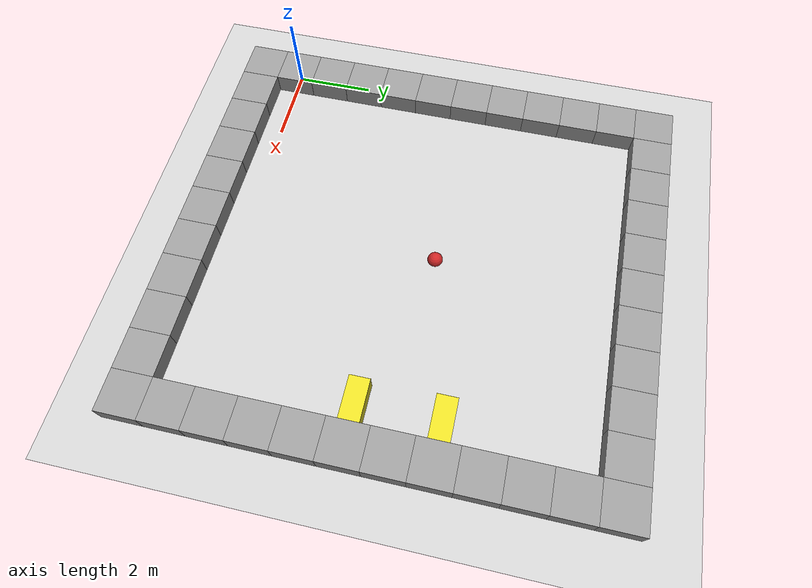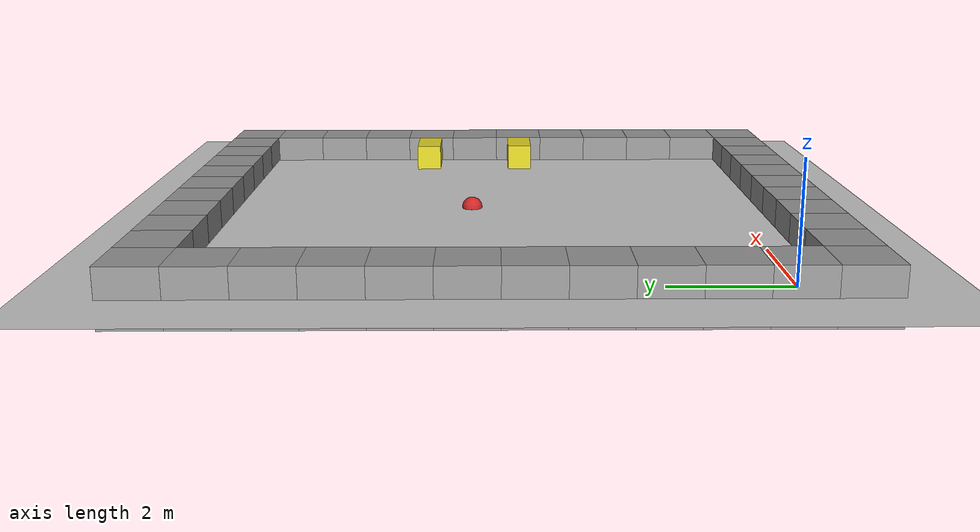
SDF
<sdf version="1.4">
 <world name="default">
  <light name="sun" type="directional">
   <pose>0 0 10 0 -0 0</pose>
   <diffuse>0.8 0.8 0.8 1</diffuse>
   <specular>0.2 0.2 0.2 1</specular>
   <attenuation>
    <range>1000</range>
    <constant>0.9</constant>
    <linear>0.01</linear>
    <quadratic>0.001</quadratic>
   </attenuation>
   <direction>-0.5 0.1 -0.9</direction>
  </light>
  <model name="ground_plane">
   <static>1</static>
   <link name="link">
    <collision name="collision">
     <geometry><plane><normal>0 0 1</normal><size>100 100</size></plane></geometry>
     <surface><friction><ode><mu>100</mu><mu2>50</mu2></ode></friction></surface>
    </collision>
    <visual name="visual">
     <cast_shadows>0</cast_shadows>
     <geometry><plane><normal>0 0 1</normal><size>100 100</size></plane></geometry>
     <material>
      <script><uri>file://media/materials/scripts/gazebo.material</uri><name>Gazebo/Grey</name></script>
     </material>
    </visual>
    <velocity_decay><linear>0</linear><angular>0</angular></velocity_decay>
   </link>
  </model>
  <physics type="ode">
   <max_step_size>0.001</max_step_size>
   <real_time_factor>1</real_time_factor>
   <real_time_update_rate>1000</real_time_update_rate>
   <gravity>0 0 -9.8</gravity>
  </physics>
  <scene><ambient>0.4 0.4 0.4 1</ambient><background>0.7 0.7 0.7 1</background><shadows>1</shadows></scene>
  <spherical_coordinates>
   <surface_model>EARTH_WGS84</surface_model>
   <latitude_deg>0</latitude_deg>
   <longitude_deg>0</longitude_deg>
   <elevation>0</elevation>
   <heading_deg>0</heading_deg>
  </spherical_coordinates>
  <model name="red_ball_1">
   <pose>5 5 0 0 -0 0</pose>
   <link name="link">
    <inertial>
     <mass>1</mass>
     <inertia><ixx>1</ixx><ixy>0</ixy><ixz>0</ixz><iyy>1</iyy><iyz>0</iyz><izz>1</izz></inertia>
    </inertial>
    <collision name="collision"><geometry><sphere><radius>0.192159</radius></sphere></geometry></collision>
    <visual name="visual">
     <geometry><sphere><radius>0.192159</radius></sphere></geometry>
     <material>
      <script><uri>file://media/materials/scripts/gazebo.material</uri><name>Gazebo/Red</name></script>
     </material>
    </visual>
    <velocity_decay><linear>0</linear><angular>0</angular></velocity_decay>
   </link>
   <static>0</static>
  </model>
  <model name="unit_box_1">
   <pose>0 -1 0 0 -0 0</pose>
   <link name="link">
    <inertial>
     <mass>1</mass>
     <inertia><ixx>1</ixx><ixy>0</ixy><ixz>0</ixz><iyy>1</iyy><iyz>0</iyz><izz>1</izz></inertia>
    </inertial>
    <collision name="collision"><geometry><box><size>1 1 1</size></box></geometry></collision>
    <visual name="visual">
     <geometry><box><size>1 1 1</size></box></geometry>
     <material>
      <script><uri>file://media/materials/scripts/gazebo.material</uri><name>Gazebo/Grey</name></script>
     </material>
    </visual>
    <velocity_decay><linear>0</linear><angular>0</angular></velocity_decay>
   </link>
   <static>1</static>
  </model>
  <model name="unit_box_2">
   <pose>1 -1 0 0 -0 0</pose>
   <link name="link">
    <inertial>
     <mass>1</mass>
     <inertia><ixx>1</ixx><ixy>0</ixy><ixz>0</ixz><iyy>1</iyy><iyz>0</iyz><izz>1</izz></inertia>
    </inertial>
    <collision name="collision"><geometry><box><size>1 1 1</size></box></geometry></collision>
    <visual name="visual">
     <geometry><box><size>1 1 1</size></box></geometry>
     <material>
      <script><uri>file://media/materials/scripts/gazebo.material</uri><name>Gazebo/Grey</name></script>
     </material>
    </visual>
    <velocity_decay><linear>0</linear><angular>0</angular></velocity_decay>
   </link>
   <static>1</static>
  </model>
  <model name="unit_box_3">
   <pose>2 -1 0 0 -0 0</pose>
   <link name="link">
    <inertial>
     <mass>1</mass>
     <inertia><ixx>1</ixx><ixy>0</ixy><ixz>0</ixz><iyy>1</iyy><iyz>0</iyz><izz>1</izz></inertia>
    </inertial>
    <collision name="collision"><geometry><box><size>1 1 1</size></box></geometry></collision>
    <visual name="visual">
     <geometry><box><size>1 1 1</size></box></geometry>
     <material>
      <script><uri>file://media/materials/scripts/gazebo.material</uri><name>Gazebo/Grey</name></script>
     </material>
    </visual>
    <velocity_decay><linear>0</linear><angular>0</angular></velocity_decay>
   </link>
   <static>1</static>
  </model>
  <model name="unit_box_4">
   <pose>3 -1 0 0 -0 0</pose>
   <link name="link">
    <inertial>
     <mass>1</mass>
     <inertia><ixx>1</ixx><ixy>0</ixy><ixz>0</ixz><iyy>1</iyy><iyz>0</iyz><izz>1</izz></inertia>
    </inertial>
    <collision name="collision"><geometry><box><size>1 1 1</size></box></geometry></collision>
    <visual name="visual">
     <geometry><box><size>1 1 1</size></box></geometry>
     <material>
      <script><uri>file://media/materials/scripts/gazebo.material</uri><name>Gazebo/Grey</name></script>
     </material>
    </visual>
    <velocity_decay><linear>0</linear><angular>0</angular></velocity_decay>
   </link>
   <static>1</static>
  </model>
  <model name="unit_box_5">
   <pose>4 -1 0 0 -0 0</pose>
   <link name="link">
    <inertial>
     <mass>1</mass>
     <inertia><ixx>1</ixx><ixy>0</ixy><ixz>0</ixz><iyy>1</iyy><iyz>0</iyz><izz>1</izz></inertia>
    </inertial>
    <collision name="collision"><geometry><box><size>1 1 1</size></box></geometry></collision>
    <visual name="visual">
     <geometry><box><size>1 1 1</size></box></geometry>
     <material>
      <script><uri>file://media/materials/scripts/gazebo.material</uri><name>Gazebo/Grey</name></script>
     </material>
    </visual>
    <velocity_decay><linear>0</linear><angular>0</angular></velocity_decay>
   </link>
   <static>1</static>
  </model>
  <model name="unit_box_6">
   <pose>5 -1 0 0 -0 0</pose>
   <link name="link">
    <inertial>
     <mass>1</mass>
     <inertia><ixx>1</ixx><ixy>0</ixy><ixz>0</ixz><iyy>1</iyy><iyz>0</iyz><izz>1</izz></inertia>
    </inertial>
    <collision name="collision"><geometry><box><size>1 1 1</size></box></geometry></collision>
    <visual name="visual">
     <geometry><box><size>1 1 1</size></box></geometry>
     <material>
      <script><uri>file://media/materials/scripts/gazebo.material</uri><name>Gazebo/Grey</name></script>
     </material>
    </visual>
    <velocity_decay><linear>0</linear><angular>0</angular></velocity_decay>
   </link>
   <static>1</static>
  </model>
  <model name="unit_box_7">
   <pose>6 -1 0 0 -0 0</pose>
   <link name="link">
    <inertial>
     <mass>1</mass>
     <inertia><ixx>1</ixx><ixy>0</ixy><ixz>0</ixz><iyy>1</iyy><iyz>0</iyz><izz>1</izz></inertia>
    </inertial>
    <collision name="collision"><geometry><box><size>1 1 1</size></box></geometry></collision>
    <visual name="visual">
     <geometry><box><size>1 1 1</size></box></geometry>
     <material>
      <script><uri>file://media/materials/scripts/gazebo.material</uri><name>Gazebo/Grey</name></script>
     </material>
    </visual>
    <velocity_decay><linear>0</linear><angular>0</angular></velocity_decay>
   </link>
   <static>1</static>
  </model>
  <model name="unit_box_8">
   <pose>7 -1 0 0 -0 0</pose>
   <link name="link">
    <inertial>
     <mass>1</mass>
     <inertia><ixx>1</ixx><ixy>0</ixy><ixz>0</ixz><iyy>1</iyy><iyz>0</iyz><izz>1</izz></inertia>
    </inertial>
    <collision name="collision"><geometry><box><size>1 1 1</size></box></geometry></collision>
    <visual name="visual">
     <geometry><box><size>1 1 1</size></box></geometry>
     <material>
      <script><uri>file://media/materials/scripts/gazebo.material</uri><name>Gazebo/Grey</name></script>
     </material>
    </visual>
    <velocity_decay><linear>0</linear><angular>0</angular></velocity_decay>
   </link>
   <static>1</static>
  </model>
  <model name="unit_box_9">
   <pose>8 -1 0 0 -0 0</pose>
   <link name="link">
    <inertial>
     <mass>1</mass>
     <inertia><ixx>1</ixx><ixy>0</ixy><ixz>0</ixz><iyy>1</iyy><iyz>0</iyz><izz>1</izz></inertia>
    </inertial>
    <collision name="collision"><geometry><box><size>1 1 1</size></box></geometry></collision>
    <visual name="visual">
     <geometry><box><size>1 1 1</size></box></geometry>
     <material>
      <script><uri>file://media/materials/scripts/gazebo.material</uri><name>Gazebo/Grey</name></script>
     </material>
    </visual>
    <velocity_decay><linear>0</linear><angular>0</angular></velocity_decay>
   </link>
   <static>1</static>
  </model>
  <model name="unit_box_10">
   <pose>9 -1 0 0 -0 0</pose>
   <link name="link">
    <inertial>
     <mass>1</mass>
     <inertia><ixx>1</ixx><ixy>0</ixy><ixz>0</ixz><iyy>1</iyy><iyz>0</iyz><izz>1</izz></inertia>
    </inertial>
    <collision name="collision"><geometry><box><size>1 1 1</size></box></geometry></collision>
    <visual name="visual">
     <geometry><box><size>1 1 1</size></box></geometry>
     <material>
      <script><uri>file://media/materials/scripts/gazebo.material</uri><name>Gazebo/Grey</name></script>
     </material>
    </visual>
    <velocity_decay><linear>0</linear><angular>0</angular></velocity_decay>
   </link>
   <static>1</static>
  </model>
  <model name="unit_box_11">
   <pose>10 -1 0 0 -0 0</pose>
   <link name="link">
    <inertial>
     <mass>1</mass>
     <inertia><ixx>1</ixx><ixy>0</ixy><ixz>0</ixz><iyy>1</iyy><iyz>0</iyz><izz>1</izz></inertia>
    </inertial>
    <collision name="collision"><geometry><box><size>1 1 1</size></box></geometry></collision>
    <visual name="visual">
     <geometry><box><size>1 1 1</size></box></geometry>
     <material>
      <script><uri>file://media/materials/scripts/gazebo.material</uri><name>Gazebo/Grey</name></script>
     </material>
    </visual>
    <velocity_decay><linear>0</linear><angular>0</angular></velocity_decay>
   </link>
   <static>1</static>
  </model>
  <model name="unit_box_12">
   <link name="link">
    <inertial>
     <mass>1</mass>
     <inertia><ixx>1</ixx><ixy>0</ixy><ixz>0</ixz><iyy>1</iyy><iyz>0</iyz><izz>1</izz></inertia>
    </inertial>
    <collision name="collision"><geometry><box><size>1 1 1</size></box></geometry></collision>
    <visual name="visual">
     <geometry><box><size>1 1 1</size></box></geometry>
     <material>
      <script><uri>file://media/materials/scripts/gazebo.material</uri><name>Gazebo/Grey</name></script>
     </material>
    </visual>
    <velocity_decay><linear>0</linear><angular>0</angular></velocity_decay>
   </link>
   <static>1</static>
  </model>
  <model name="unit_box_13">
   <pose>0 1 0 0 -0 0</pose>
   <link name="link">
    <inertial>
     <mass>1</mass>
     <inertia><ixx>1</ixx><ixy>0</ixy><ixz>0</ixz><iyy>1</iyy><iyz>0</iyz><izz>1</izz></inertia>
    </inertial>
    <collision name="collision"><geometry><box><size>1 1 1</size></box></geometry></collision>
    <visual name="visual">
     <geometry><box><size>1 1 1</size></box></geometry>
     <material>
      <script><uri>file://media/materials/scripts/gazebo.material</uri><name>Gazebo/Grey</name></script>
     </material>
    </visual>
    <velocity_decay><linear>0</linear><angular>0</angular></velocity_decay>
   </link>
   <static>1</static>
  </model>
  <model name="unit_box_14">
   <pose>0 2 0 0 -0 0</pose>
   <link name="link">
    <inertial>
     <mass>1</mass>
     <inertia><ixx>1</ixx><ixy>0</ixy><ixz>0</ixz><iyy>1</iyy><iyz>0</iyz><izz>1</izz></inertia>
    </inertial>
    <collision name="collision"><geometry><box><size>1 1 1</size></box></geometry></collision>
    <visual name="visual">
     <geometry><box><size>1 1 1</size></box></geometry>
     <material>
      <script><uri>file://media/materials/scripts/gazebo.material</uri><name>Gazebo/Grey</name></script>
     </material>
    </visual>
    <velocity_decay><linear>0</linear><angular>0</angular></velocity_decay>
   </link>
   <static>1</static>
  </model>
  <model name="unit_box_15">
   <pose>0 3 0 0 -0 0</pose>
   <link name="link">
    <inertial>
     <mass>1</mass>
     <inertia><ixx>1</ixx><ixy>0</ixy><ixz>0</ixz><iyy>1</iyy><iyz>0</iyz><izz>1</izz></inertia>
    </inertial>
    <collision name="collision"><geometry><box><size>1 1 1</size></box></geometry></collision>
    <visual name="visual">
     <geometry><box><size>1 1 1</size></box></geometry>
     <material>
      <script><uri>file://media/materials/scripts/gazebo.material</uri><name>Gazebo/Grey</name></script>
     </material>
    </visual>
    <velocity_decay><linear>0</linear><angular>0</angular></velocity_decay>
   </link>
   <static>1</static>
  </model>
  <model name="unit_box_16">
   <pose>0 4 0 0 -0 0</pose>
   <link name="link">
    <inertial>
     <mass>1</mass>
     <inertia><ixx>1</ixx><ixy>0</ixy><ixz>0</ixz><iyy>1</iyy><iyz>0</iyz><izz>1</izz></inertia>
    </inertial>
    <collision name="collision"><geometry><box><size>1 1 1</size></box></geometry></collision>
    <visual name="visual">
     <geometry><box><size>1 1 1</size></box></geometry>
     <material>
      <script><uri>file://media/materials/scripts/gazebo.material</uri><name>Gazebo/Grey</name></script>
     </material>
    </visual>
    <velocity_decay><linear>0</linear><angular>0</angular></velocity_decay>
   </link>
   <static>1</static>
  </model>
  <model name="unit_box_17">
   <pose>0 5 0 0 -0 0</pose>
   <link name="link">
    <inertial>
     <mass>1</mass>
     <inertia><ixx>1</ixx><ixy>0</ixy><ixz>0</ixz><iyy>1</iyy><iyz>0</iyz><izz>1</izz></inertia>
    </inertial>
    <collision name="collision"><geometry><box><size>1 1 1</size></box></geometry></collision>
    <visual name="visual">
     <geometry><box><size>1 1 1</size></box></geometry>
     <material>
      <script><uri>file://media/materials/scripts/gazebo.material</uri><name>Gazebo/Grey</name></script>
     </material>
    </visual>
    <velocity_decay><linear>0</linear><angular>0</angular></velocity_decay>
   </link>
   <static>1</static>
  </model>
  <model name="unit_box_18">
   <pose>0 6 0 0 -0 0</pose>
   <link name="link">
    <inertial>
     <mass>1</mass>
     <inertia><ixx>1</ixx><ixy>0</ixy><ixz>0</ixz><iyy>1</iyy><iyz>0</iyz><izz>1</izz></inertia>
    </inertial>
    <collision name="collision"><geometry><box><size>1 1 1</size></box></geometry></collision>
    <visual name="visual">
     <geometry><box><size>1 1 1</size></box></geometry>
     <material>
      <script><uri>file://media/materials/scripts/gazebo.material</uri><name>Gazebo/Grey</name></script>
     </material>
    </visual>
    <velocity_decay><linear>0</linear><angular>0</angular></velocity_decay>
   </link>
   <static>1</static>
  </model>
  <model name="unit_box_19">
   <pose>0 7 0 0 -0 0</pose>
   <link name="link">
    <inertial>
     <mass>1</mass>
     <inertia><ixx>1</ixx><ixy>0</ixy><ixz>0</ixz><iyy>1</iyy><iyz>0</iyz><izz>1</izz></inertia>
    </inertial>
    <collision name="collision"><geometry><box><size>1 1 1</size></box></geometry></collision>
    <visual name="visual">
     <geometry><box><size>1 1 1</size></box></geometry>
     <material>
      <script><uri>file://media/materials/scripts/gazebo.material</uri><name>Gazebo/Grey</name></script>
     </material>
    </visual>
    <velocity_decay><linear>0</linear><angular>0</angular></velocity_decay>
   </link>
   <static>1</static>
  </model>
  <model name="unit_box_20">
   <pose>0 8 0 0 -0 0</pose>
   <link name="link">
    <inertial>
     <mass>1</mass>
     <inertia><ixx>1</ixx><ixy>0</ixy><ixz>0</ixz><iyy>1</iyy><iyz>0</iyz><izz>1</izz></inertia>
    </inertial>
    <collision name="collision"><geometry><box><size>1 1 1</size></box></geometry></collision>
    <visual name="visual">
     <geometry><box><size>1 1 1</size></box></geometry>
     <material>
      <script><uri>file://media/materials/scripts/gazebo.material</uri><name>Gazebo/Grey</name></script>
     </material>
    </visual>
    <velocity_decay><linear>0</linear><angular>0</angular></velocity_decay>
   </link>
   <static>1</static>
  </model>
  <model name="unit_box_21">
   <pose>0 9 0 0 -0 0</pose>
   <link name="link">
    <inertial>
     <mass>1</mass>
     <inertia><ixx>1</ixx><ixy>0</ixy><ixz>0</ixz><iyy>1</iyy><iyz>0</iyz><izz>1</izz></inertia>
    </inertial>
    <collision name="collision"><geometry><box><size>1 1 1</size></box></geometry></collision>
    <visual name="visual">
     <geometry><box><size>1 1 1</size></box></geometry>
     <material>
      <script><uri>file://media/materials/scripts/gazebo.material</uri><name>Gazebo/Grey</name></script>
     </material>
    </visual>
    <velocity_decay><linear>0</linear><angular>0</angular></velocity_decay>
   </link>
   <static>1</static>
  </model>
  <model name="unit_box_22">
   <pose>0 10 0 0 -0 0</pose>
   <link name="link">
    <inertial>
     <mass>1</mass>
     <inertia><ixx>1</ixx><ixy>0</ixy><ixz>0</ixz><iyy>1</iyy><iyz>0</iyz><izz>1</izz></inertia>
    </inertial>
    <collision name="collision"><geometry><box><size>1 1 1</size></box></geometry></collision>
    <visual name="visual">
     <geometry><box><size>1 1 1</size></box></geometry>
     <material>
      <script><uri>file://media/materials/scripts/gazebo.material</uri><name>Gazebo/Grey</name></script>
     </material>
    </visual>
    <velocity_decay><linear>0</linear><angular>0</angular></velocity_decay>
   </link>
   <static>1</static>
  </model>
  <model name="unit_box_23">
   <pose>1 10 0 0 -0 0</pose>
   <link name="link">
    <inertial>
     <mass>1</mass>
     <inertia><ixx>1</ixx><ixy>0</ixy><ixz>0</ixz><iyy>1</iyy><iyz>0</iyz><izz>1</izz></inertia>
    </inertial>
    <collision name="collision"><geometry><box><size>1 1 1</size></box></geometry></collision>
    <visual name="visual">
     <geometry><box><size>1 1 1</size></box></geometry>
     <material>
      <script><uri>file://media/materials/scripts/gazebo.material</uri><name>Gazebo/Grey</name></script>
     </material>
    </visual>
    <velocity_decay><linear>0</linear><angular>0</angular></velocity_decay>
   </link>
   <static>1</static>
  </model>
  <model name="unit_box_24">
   <pose>2 10 0 0 -0 0</pose>
   <link name="link">
    <inertial>
     <mass>1</mass>
     <inertia><ixx>1</ixx><ixy>0</ixy><ixz>0</ixz><iyy>1</iyy><iyz>0</iyz><izz>1</izz></inertia>
    </inertial>
    <collision name="collision"><geometry><box><size>1 1 1</size></box></geometry></collision>
    <visual name="visual">
     <geometry><box><size>1 1 1</size></box></geometry>
     <material>
      <script><uri>file://media/materials/scripts/gazebo.material</uri><name>Gazebo/Grey</name></script>
     </material>
    </visual>
    <velocity_decay><linear>0</linear><angular>0</angular></velocity_decay>
   </link>
   <static>1</static>
  </model>
  <model name="unit_box_25">
   <pose>3 10 0 0 -0 0</pose>
   <link name="link">
    <inertial>
     <mass>1</mass>
     <inertia><ixx>1</ixx><ixy>0</ixy><ixz>0</ixz><iyy>1</iyy><iyz>0</iyz><izz>1</izz></inertia>
    </inertial>
    <collision name="collision"><geometry><box><size>1 1 1</size></box></geometry></collision>
    <visual name="visual">
     <geometry><box><size>1 1 1</size></box></geometry>
     <material>
      <script><uri>file://media/materials/scripts/gazebo.material</uri><name>Gazebo/Grey</name></script>
     </material>
    </visual>
    <velocity_decay><linear>0</linear><angular>0</angular></velocity_decay>
   </link>
   <static>1</static>
  </model>
  <model name="unit_box_26">
   <pose>4 10 0 0 -0 0</pose>
   <link name="link">
    <inertial>
     <mass>1</mass>
     <inertia><ixx>1</ixx><ixy>0</ixy><ixz>0</ixz><iyy>1</iyy><iyz>0</iyz><izz>1</izz></inertia>
    </inertial>
    <collision name="collision"><geometry><box><size>1 1 1</size></box></geometry></collision>
    <visual name="visual">
     <geometry><box><size>1 1 1</size></box></geometry>
     <material>
      <script><uri>file://media/materials/scripts/gazebo.material</uri><name>Gazebo/Grey</name></script>
     </material>
    </visual>
    <velocity_decay><linear>0</linear><angular>0</angular></velocity_decay>
   </link>
   <static>1</static>
  </model>
  <model name="unit_box_27">
   <pose>5 10 0 0 -0 0</pose>
   <link name="link">
    <inertial>
     <mass>1</mass>
     <inertia><ixx>1</ixx><ixy>0</ixy><ixz>0</ixz><iyy>1</iyy><iyz>0</iyz><izz>1</izz></inertia>
    </inertial>
    <collision name="collision"><geometry><box><size>1 1 1</size></box></geometry></collision>
    <visual name="visual">
     <geometry><box><size>1 1 1</size></box></geometry>
     <material>
      <script><uri>file://media/materials/scripts/gazebo.material</uri><name>Gazebo/Grey</name></script>
     </material>
    </visual>
    <velocity_decay><linear>0</linear><angular>0</angular></velocity_decay>
   </link>
   <static>1</static>
  </model>
  <model name="unit_box_28">
   <pose>6 10 0 0 -0 0</pose>
   <link name="link">
    <inertial>
     <mass>1</mass>
     <inertia><ixx>1</ixx><ixy>0</ixy><ixz>0</ixz><iyy>1</iyy><iyz>0</iyz><izz>1</izz></inertia>
    </inertial>
    <collision name="collision"><geometry><box><size>1 1 1</size></box></geometry></collision>
    <visual name="visual">
     <geometry><box><size>1 1 1</size></box></geometry>
     <material>
      <script><uri>file://media/materials/scripts/gazebo.material</uri><name>Gazebo/Grey</name></script>
     </material>
    </visual>
    <velocity_decay><linear>0</linear><angular>0</angular></velocity_decay>
   </link>
   <static>1</static>
  </model>
  <model name="unit_box_29">
   <pose>7 10 0 0 -0 0</pose>
   <link name="link">
    <inertial>
     <mass>1</mass>
     <inertia><ixx>1</ixx><ixy>0</ixy><ixz>0</ixz><iyy>1</iyy><iyz>0</iyz><izz>1</izz></inertia>
    </inertial>
    <collision name="collision"><geometry><box><size>1 1 1</size></box></geometry></collision>
    <visual name="visual">
     <geometry><box><size>1 1 1</size></box></geometry>
     <material>
      <script><uri>file://media/materials/scripts/gazebo.material</uri><name>Gazebo/Grey</name></script>
     </material>
    </visual>
    <velocity_decay><linear>0</linear><angular>0</angular></velocity_decay>
   </link>
   <static>1</static>
  </model>
  <model name="unit_box_30">
   <pose>8 10 0 0 -0 0</pose>
   <link name="link">
    <inertial>
     <mass>1</mass>
     <inertia><ixx>1</ixx><ixy>0</ixy><ixz>0</ixz><iyy>1</iyy><iyz>0</iyz><izz>1</izz></inertia>
    </inertial>
    <collision name="collision"><geometry><box><size>1 1 1</size></box></geometry></collision>
    <visual name="visual">
     <geometry><box><size>1 1 1</size></box></geometry>
     <material>
      <script><uri>file://media/materials/scripts/gazebo.material</uri><name>Gazebo/Grey</name></script>
     </material>
    </visual>
    <velocity_decay><linear>0</linear><angular>0</angular></velocity_decay>
   </link>
   <static>1</static>
  </model>
  <model name="unit_box_31">
   <pose>9 10 0 0 -0 0</pose>
   <link name="link">
    <inertial>
     <mass>1</mass>
     <inertia><ixx>1</ixx><ixy>0</ixy><ixz>0</ixz><iyy>1</iyy><iyz>0</iyz><izz>1</izz></inertia>
    </inertial>
    <collision name="collision"><geometry><box><size>1 1 1</size></box></geometry></collision>
    <visual name="visual">
     <geometry><box><size>1 1 1</size></box></geometry>
     <material>
      <script><uri>file://media/materials/scripts/gazebo.material</uri><name>Gazebo/Grey</name></script>
     </material>
    </visual>
    <velocity_decay><linear>0</linear><angular>0</angular></velocity_decay>
   </link>
   <static>1</static>
  </model>
  <model name="unit_box_32">
   <pose>10 10 0 0 -0 0</pose>
   <link name="link">
    <inertial>
     <mass>1</mass>
     <inertia><ixx>1</ixx><ixy>0</ixy><ixz>0</ixz><iyy>1</iyy><iyz>0</iyz><izz>1</izz></inertia>
    </inertial>
    <collision name="collision"><geometry><box><size>1 1 1</size></box></geometry></collision>
    <visual name="visual">
     <geometry><box><size>1 1 1</size></box></geometry>
     <material>
      <script><uri>file://media/materials/scripts/gazebo.material</uri><name>Gazebo/Grey</name></script>
     </material>
    </visual>
    <velocity_decay><linear>0</linear><angular>0</angular></velocity_decay>
   </link>
   <static>1</static>
  </model>
  <model name="unit_box_33">
   <pose>10 10 0 0 -0 0</pose>
   <link name="link">
    <inertial>
     <mass>1</mass>
     <inertia><ixx>1</ixx><ixy>0</ixy><ixz>0</ixz><iyy>1</iyy><iyz>0</iyz><izz>1</izz></inertia>
    </inertial>
    <collision name="collision"><geometry><box><size>1 1 1</size></box></geometry></collision>
    <visual name="visual">
     <geometry><box><size>1 1 1</size></box></geometry>
     <material>
      <script><uri>file://media/materials/scripts/gazebo.material</uri><name>Gazebo/Grey</name></script>
     </material>
    </visual>
    <velocity_decay><linear>0</linear><angular>0</angular></velocity_decay>
   </link>
   <static>1</static>
  </model>
  <model name="unit_box_34">
   <pose>10 9 0 0 -0 0</pose>
   <link name="link">
    <inertial>
     <mass>1</mass>
     <inertia><ixx>1</ixx><ixy>0</ixy><ixz>0</ixz><iyy>1</iyy><iyz>0</iyz><izz>1</izz></inertia>
    </inertial>
    <collision name="collision"><geometry><box><size>1 1 1</size></box></geometry></collision>
    <visual name="visual">
     <geometry><box><size>1 1 1</size></box></geometry>
     <material>
      <script><uri>file://media/materials/scripts/gazebo.material</uri><name>Gazebo/Grey</name></script>
     </material>
    </visual>
    <velocity_decay><linear>0</linear><angular>0</angular></velocity_decay>
   </link>
   <static>1</static>
  </model>
  <model name="unit_box_35">
   <pose>10 8 0 0 -0 0</pose>
   <link name="link">
    <inertial>
     <mass>1</mass>
     <inertia><ixx>1</ixx><ixy>0</ixy><ixz>0</ixz><iyy>1</iyy><iyz>0</iyz><izz>1</izz></inertia>
    </inertial>
    <collision name="collision"><geometry><box><size>1 1 1</size></box></geometry></collision>
    <visual name="visual">
     <geometry><box><size>1 1 1</size></box></geometry>
     <material>
      <script><uri>file://media/materials/scripts/gazebo.material</uri><name>Gazebo/Grey</name></script>
     </material>
    </visual>
    <velocity_decay><linear>0</linear><angular>0</angular></velocity_decay>
   </link>
   <static>1</static>
  </model>
  <model name="unit_box_36">
   <pose>10 7 0 0 -0 0</pose>
   <link name="link">
    <inertial>
     <mass>1</mass>
     <inertia><ixx>1</ixx><ixy>0</ixy><ixz>0</ixz><iyy>1</iyy><iyz>0</iyz><izz>1</izz></inertia>
    </inertial>
    <collision name="collision"><geometry><box><size>1 1 1</size></box></geometry></collision>
    <visual name="visual">
     <geometry><box><size>1 1 1</size></box></geometry>
     <material>
      <script><uri>file://media/materials/scripts/gazebo.material</uri><name>Gazebo/Grey</name></script>
     </material>
    </visual>
    <velocity_decay><linear>0</linear><angular>0</angular></velocity_decay>
   </link>
   <static>1</static>
  </model>
  <model name="unit_box_37">
   <pose>10 6 0 0 -0 0</pose>
   <link name="link">
    <inertial>
     <mass>1</mass>
     <inertia><ixx>1</ixx><ixy>0</ixy><ixz>0</ixz><iyy>1</iyy><iyz>0</iyz><izz>1</izz></inertia>
    </inertial>
    <collision name="collision"><geometry><box><size>1 1 1</size></box></geometry></collision>
    <visual name="visual">
     <geometry><box><size>1 1 1</size></box></geometry>
     <material>
      <script><uri>file://media/materials/scripts/gazebo.material</uri><name>Gazebo/Grey</name></script>
     </material>
    </visual>
    <velocity_decay><linear>0</linear><angular>0</angular></velocity_decay>
   </link>
   <static>1</static>
  </model>
  <model name="unit_box_38">
   <pose>10 5 0 0 -0 0</pose>
   <link name="link">
    <inertial>
     <mass>1</mass>
     <inertia><ixx>1</ixx><ixy>0</ixy><ixz>0</ixz><iyy>1</iyy><iyz>0</iyz><izz>1</izz></inertia>
    </inertial>
    <collision name="collision"><geometry><box><size>1 1 1</size></box></geometry></collision>
    <visual name="visual">
     <geometry><box><size>1 1 1</size></box></geometry>
     <material>
      <script><uri>file://media/materials/scripts/gazebo.material</uri><name>Gazebo/Grey</name></script>
     </material>
    </visual>
    <velocity_decay><linear>0</linear><angular>0</angular></velocity_decay>
   </link>
   <static>1</static>
  </model>
  <model name="unit_box_39">
   <pose>10 4 0 0 -0 0</pose>
   <link name="link">
    <inertial>
     <mass>1</mass>
     <inertia><ixx>1</ixx><ixy>0</ixy><ixz>0</ixz><iyy>1</iyy><iyz>0</iyz><izz>1</izz></inertia>
    </inertial>
    <collision name="collision"><geometry><box><size>1 1 1</size></box></geometry></collision>
    <visual name="visual">
     <geometry><box><size>1 1 1</size></box></geometry>
     <material>
      <script><uri>file://media/materials/scripts/gazebo.material</uri><name>Gazebo/Grey</name></script>
     </material>
    </visual>
    <velocity_decay><linear>0</linear><angular>0</angular></velocity_decay>
   </link>
   <static>1</static>
  </model>
  <model name="unit_box_40">
   <pose>10 3 0 0 -0 0</pose>
   <link name="link">
    <inertial>
     <mass>1</mass>
     <inertia><ixx>1</ixx><ixy>0</ixy><ixz>0</ixz><iyy>1</iyy><iyz>0</iyz><izz>1</izz></inertia>
    </inertial>
    <collision name="collision"><geometry><box><size>1 1 1</size></box></geometry></collision>
    <visual name="visual">
     <geometry><box><size>1 1 1</size></box></geometry>
     <material>
      <script><uri>file://media/materials/scripts/gazebo.material</uri><name>Gazebo/Grey</name></script>
     </material>
    </visual>
    <velocity_decay><linear>0</linear><angular>0</angular></velocity_decay>
   </link>
   <static>1</static>
  </model>
  <model name="unit_box_41">
   <pose>10 2 0 0 -0 0</pose>
   <link name="link">
    <inertial>
     <mass>1</mass>
     <inertia><ixx>1</ixx><ixy>0</ixy><ixz>0</ixz><iyy>1</iyy><iyz>0</iyz><izz>1</izz></inertia>
    </inertial>
    <collision name="collision"><geometry><box><size>1 1 1</size></box></geometry></collision>
    <visual name="visual">
     <geometry><box><size>1 1 1</size></box></geometry>
     <material>
      <script><uri>file://media/materials/scripts/gazebo.material</uri><name>Gazebo/Grey</name></script>
     </material>
    </visual>
    <velocity_decay><linear>0</linear><angular>0</angular></velocity_decay>
   </link>
   <static>1</static>
  </model>
  <model name="unit_box_42">
   <pose>10 1 0 0 -0 0</pose>
   <link name="link">
    <inertial>
     <mass>1</mass>
     <inertia><ixx>1</ixx><ixy>0</ixy><ixz>0</ixz><iyy>1</iyy><iyz>0</iyz><izz>1</izz></inertia>
    </inertial>
    <collision name="collision"><geometry><box><size>1 1 1</size></box></geometry></collision>
    <visual name="visual">
     <geometry><box><size>1 1 1</size></box></geometry>
     <material>
      <script><uri>file://media/materials/scripts/gazebo.material</uri><name>Gazebo/Grey</name></script>
     </material>
    </visual>
    <velocity_decay><linear>0</linear><angular>0</angular></velocity_decay>
   </link>
   <static>1</static>
  </model>
  <model name="unit_box_43">
   <pose>10 0 0 0 -0 0</pose>
   <link name="link">
    <inertial>
     <mass>1</mass>
     <inertia><ixx>1</ixx><ixy>0</ixy><ixz>0</ixz><iyy>1</iyy><iyz>0</iyz><izz>1</izz></inertia>
    </inertial>
    <collision name="collision"><geometry><box><size>1 1 1</size></box></geometry></collision>
    <visual name="visual">
     <geometry><box><size>1 1 1</size></box></geometry>
     <material>
      <script><uri>file://media/materials/scripts/gazebo.material</uri><name>Gazebo/Grey</name></script>
     </material>
    </visual>
    <velocity_decay><linear>0</linear><angular>0</angular></velocity_decay>
   </link>
   <static>1</static>
  </model>
  <model name="unit_box_44">
   <pose>9 6 0 0 -0 0</pose>
   <link name="link">
    <inertial>
     <mass>1</mass>
     <inertia><ixx>1</ixx><ixy>0</ixy><ixz>0</ixz><iyy>1</iyy><iyz>0</iyz><izz>1</izz></inertia>
    </inertial>
    <collision name="collision"><geometry><box><size>1 0.5 1</size></box></geometry></collision>
    <visual name="visual">
     <geometry><box><size>1 0.5 1</size></box></geometry>
     <material>
      <script><uri>file://media/materials/scripts/gazebo.material</uri><name>Gazebo/Yellow</name></script>
     </material>
    </visual>
    <velocity_decay><linear>0</linear><angular>0</angular></velocity_decay>
   </link>
   <static>1</static>
  </model>
  <model name="unit_box_45">
   <pose>9 4 0 0 -0 0</pose>
   <link name="link">
    <inertial>
     <mass>1</mass>
     <inertia><ixx>1</ixx><ixy>0</ixy><ixz>0</ixz><iyy>1</iyy><iyz>0</iyz><izz>1</izz></inertia>
    </inertial>
    <collision name="collision"><geometry><box><size>1 0.5 1</size></box></geometry></collision>
    <visual name="visual">
     <geometry><box><size>1 0.5 1</size></box></geometry>
     <material>
      <script><uri>file://media/materials/scripts/gazebo.material</uri><name>Gazebo/Yellow</name></script>
     </material>
    </visual>
    <velocity_decay><linear>0</linear><angular>0</angular></velocity_decay>
   </link>
   <static>1</static>
  </model>
 </world>
</sdf>
